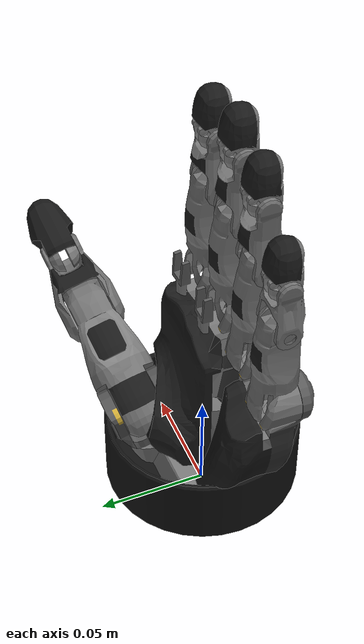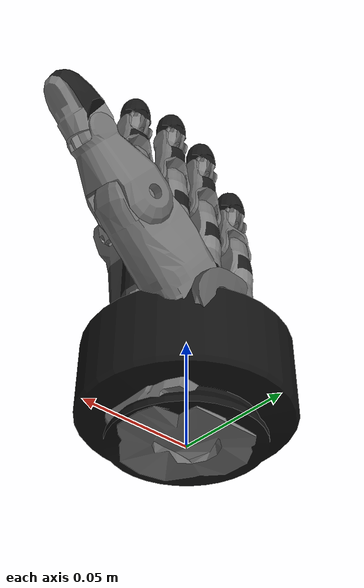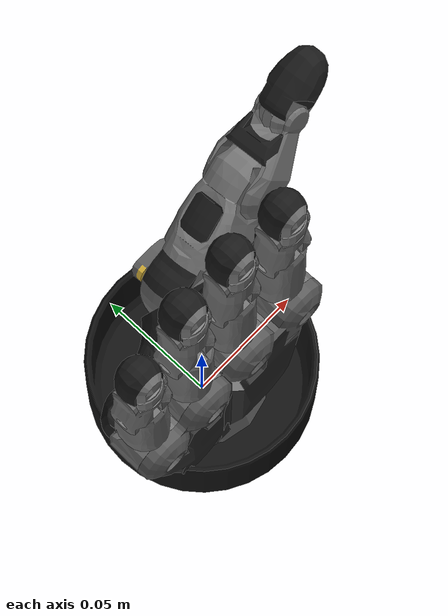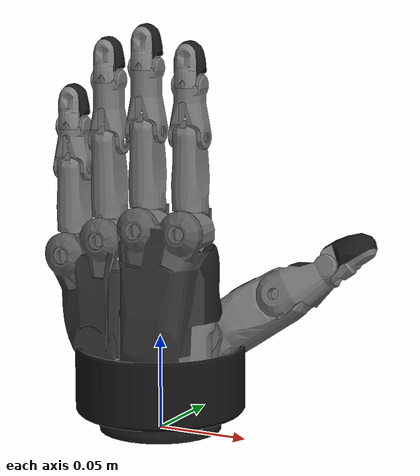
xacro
<?xml version="1.0"?>
<robot name="svh" xmlns:xacro="http://www.ros.org/wiki/xacro">

 <xacro:include filename="$(find schunk_svh_description)/urdf/svh.urdf.xacro" />

 <link name="base_link" />

 <xacro:svh parent="base_link" name="left_hand" side="-1">
    <origin xyz="0 0 0"  rpy= "0 0 0" />
  </xacro:svh>

</robot>

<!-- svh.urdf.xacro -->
<robot xmlns:xacro="http://www.ros.org/wiki/xacro">

  <xacro:include filename="$(find schunk_svh_description)/urdf/common.xacro" />
  <xacro:include filename="$(find schunk_svh_description)/urdf/svh.transmission.xacro" />
  <xacro:include filename="$(find schunk_svh_description)/urdf/svh.gazebo.xacro" />

  <xacro:property name="cyl_radius" value="0.001" />
  <xacro:macro name="svh" params="parent name side *origin robot_namespace:='/'">
    <!-- RIGHT HAND = 1, LEFT HAND = -1 -->
    <!-- BASE_LINE LINKS -->

    <joint name="${name}_base_joint" type="fixed" >
      <xacro:insert_block name="origin" />
      <parent link="${parent}" />
      <child link="${name}_base_link" />
    </joint>

    <link name="${name}_base_link">
      <xacro:insert_block name="origin" />
      <visual>
        <xacro:insert_block name="origin" />
        <geometry>
          <mesh filename="package://schunk_svh_description/meshes/base10.dae" />
	</geometry>
      </visual>
      <collision>
        <xacro:insert_block name="origin" />
        <geometry>
          <mesh filename="package://schunk_svh_description/meshes/base10.dae" />
	</geometry>
      </collision>
      <inertial>
        <mass value="0.57743"/>
        <origin xyz="0.0 -2.3e-05 0.139371"/>
        <inertia ixx="0.04725" ixy="-0.0" ixz="-0.0" iyy="0.04717" iyz="0.0" izz="0.07606" />
      </inertial>
    </link>

    <link name="${name}_d">
      <xacro:default_inertial mass="0.01"/>
    </link>

    <link name="${name}_h">
      <xacro:default_inertial mass="0.01"/>
    </link>

    <link name="${name}_d2">
      <xacro:default_inertial mass="0.01"/>
    </link>

    <!-- LENGTH NOT FOUND IN DATASHEET! GUESSED!!! -->
    <link name="${name}_e1">
      <visual>
	<origin rpy="0 0 0" xyz="0 0.01313 0" />
	<geometry>
          <mesh scale="${side*(1)} 1 1" filename="package://schunk_svh_description/meshes/h10.dae" />
	</geometry>
      </visual>
      <collision>
	<origin rpy="0 0 0" xyz="0 0.01313 0" />
	<geometry>
          <mesh scale="${side*(1)} 1 1" filename="package://schunk_svh_description/meshes/h10.dae" />
	</geometry>
      </collision>
      <xacro:default_inertial mass="0.01"/>
    </link>

    <!-- LENGTH NOT FOUND IN DATASHEET! GUESSED!!! -->
    <link name="${name}_e2">
      <visual>
	<origin xyz="${side*(-0.0007)} 0 -0.01002" />
	<geometry>
          <mesh scale="${side*(1)} 1 1" filename="package://schunk_svh_description/meshes/h11.dae" />
	</geometry>
      </visual>
      <collision>
	<origin xyz="${side*(-0.0007)} 0 -0.01002" />
	<geometry>
          <mesh scale="${side*(1)} 1 1" filename="package://schunk_svh_description/meshes/h11.dae" />
	</geometry>
      </collision>
      <inertial>
        <mass value="0.46184"/>
        <origin xyz="0.145071 -0.037868 0.323449"/>
        <inertia ixx="0.01908" ixy="-0.00121" ixz="-0.00011" iyy="0.01704" iyz="0.00277" izz="0.00862"/>
      </inertial>
    </link>

    <!-- LENGTH NOT FOUND IN DATASHEET! GUESSED!!! -->
    <link name="${name}_e3">
      <xacro:default_inertial mass="0.01"/>
    </link>

    <link name="${name}_e">
    </link>

    <!-- LENGTH NOT FOUND IN DATASHEET! GUESSED, BUT POSITION CALCULATED WITH E4 = D-G-F!!! -->
    <link name="${name}_e4">
      <xacro:default_inertial mass="0.01"/>
    </link>

    <!-- LENGTH NOT FOUND IN DATASHEET! GUESSED, BUT POSITION CALCULATED WITH E5 = D-G!!! -->
    <link name="${name}_e5">
      <xacro:default_inertial mass="0.01"/>
    </link>

    <!-- THUMB LINKS -->
    <link name="${name}_z">
      <visual>
	<origin xyz="0 0 0.02442" />
	<geometry>
          <mesh scale="1 ${side*(1)} 1" filename="package://schunk_svh_description/meshes/d10.dae" />
	</geometry>
      </visual>
      <collision>
	<origin xyz="0 0 0.02442" />
	<geometry>
          <mesh scale="1 ${side*(1)} 1" filename="package://schunk_svh_description/meshes/d10.dae" />
	</geometry>
      </collision>
      <inertial>
        <mass value="0.0739"/>
        <origin xyz="0.0 0.002024 0.178636"/>
        <inertia ixx="0.00103" ixy="-0.0" ixz="-0.0" iyy="0.00165" iyz="4e-05" izz="0.00111"/>
      </inertial>
    </link>

    <link name="${name}_virtual_a">
      <xacro:default_inertial mass="0.01"/>
    </link>

    <link name="${name}_a">
      <visual>
	<geometry>
          <mesh scale="1 ${side*(1)} ${side*(1)}" filename="package://schunk_svh_description/meshes/d11.dae" />
	</geometry>
      </visual>
      <collision>
	<geometry>
          <mesh scale="1 ${side*(1)} ${side*(1)}" filename="package://schunk_svh_description/meshes/d11.dae" />
	</geometry>
      </collision>
      <inertial>
        <mass value="0.41222"/>
        <origin xyz="0.240205 0.010733 0.00019"/>
        <inertia ixx="0.00413" ixy="0.00073" ixz="-0.0" iyy="0.01679" iyz="0.0" izz="0.01796"/>
      </inertial>
    </link>

    <link name="${name}_b">
      <visual>
	<geometry>
          <mesh scale="1 ${side*(1)} ${side*(1)}" filename="package://schunk_svh_description/meshes/d12.dae" />
	</geometry>
      </visual>
      <collision>
	<geometry>
          <mesh scale="1 ${side*(1)} ${side*(1)}" filename="package://schunk_svh_description/meshes/d12.dae" />
	</geometry>
      </collision>
      <inertial>
        <mass value="0.08224"/>
        <origin xyz="0.123157 -0.008382 -2.7e-05"/>
        <inertia ixx="0.00089" ixy="5e-05" ixz="0.0" iyy="0.00139" iyz="0.0" izz="0.00103"/>
      </inertial>
    </link>

    <link name="${name}_c">
      <visual>
	<geometry>
          <mesh scale="1 ${side*(1)} ${side*(1)}" filename="package://schunk_svh_description/meshes/d13.dae" />
	</geometry>
      </visual>
      <collision>
	<geometry>
          <mesh scale="1 ${side*(1)} ${side*(1)}" filename="package://schunk_svh_description/meshes/d13.dae" />
	</geometry>
      </collision>
      <inertial>
        <mass value="0.06198"/>
        <origin xyz="0.113729 0.01094 0.0"/>
        <inertia ixx="0.00025" ixy="-0.0" ixz="-0.0" iyy="0.00051" iyz="0.0" izz="0.00052"/>
      </inertial>
    </link>

    <!-- INDEX FINGER LINKS -->
    <link name="${name}_virtual_l">
      <visual>
	<origin xyz="0 0 0.01321" />
	<geometry>
          <mesh filename="package://schunk_svh_description/meshes/f10.dae" />
	</geometry>
      </visual>
      <collision>
	<origin xyz="0 0 0.01321" />
	<geometry>
          <mesh filename="package://schunk_svh_description/meshes/f10.dae" />
	</geometry>
      </collision>
      <inertial>
        <mass value="0.02383"/>
        <origin xyz="0.003634 0.000206 -0.09885"/>
        <inertia ixx="0.00021" ixy="-0.0" ixz="-1e-05" iyy="0.00011" iyz="-0.0" izz="0.00019"/>
      </inertial>
    </link>

    <link name="${name}_l">
      <visual>
	<geometry>
          <mesh filename="package://schunk_svh_description/meshes/f11.dae" />
	</geometry>
      </visual>
      <collision>
	<geometry>
          <mesh filename="package://schunk_svh_description/meshes/f11.dae" />
	</geometry>
      </collision>
      <inertial>
        <mass value="0.13003"/>
        <origin xyz="0.261673 0.003521 0.0"/>
        <inertia ixx="0.00051" ixy="-3e-05" ixz="0.0" iyy="0.00335" iyz="-0.0" izz="0.00344"/>
      </inertial>
    </link>

    <link name="${name}_p">
      <visual>
	<geometry>
          <mesh filename="package://schunk_svh_description/meshes/f12.dae" />
	</geometry>
      </visual>
      <collision>
	<geometry>
          <mesh filename="package://schunk_svh_description/meshes/f12.dae" />
	</geometry>
      </collision>
      <inertial>
        <mass value="0.03264"/>
        <origin xyz="0.1384 -0.004609 0.0"/>
        <inertia ixx="0.00016" ixy="-0.0" ixz="0.0" iyy="0.00031" iyz="-0.0" izz="0.00024"/>
      </inertial>
    </link>

    <link name="${name}_t">
      <visual>
	<geometry>
          <mesh filename="package://schunk_svh_description/meshes/f13.dae" />
	</geometry>
      </visual>
      <collision>
	<geometry>
          <mesh filename="package://schunk_svh_description/meshes/f13.dae" />
	</geometry>
      </collision>
      <inertial>
        <mass value="0.0324"/>
        <origin xyz="0.102924 0.000592 0.0"/>
        <inertia ixx="9e-05" ixy="-1e-05" ixz="-0.0" iyy="0.00017" iyz="0.0" izz="0.00017"/>
      </inertial>
    </link>

    <!-- MIDDLE FINGER LINKS -->
    <link name="${name}_virtual_k">
      <visual>
	<origin xyz="0 0 0.01321" />
	<geometry>
          <mesh filename="package://schunk_svh_description/meshes/f20.dae" />
	</geometry>
      </visual>
      <collision>
	<origin xyz="0 0 0.01321" />
	<geometry>
          <mesh filename="package://schunk_svh_description/meshes/f20.dae" />
	</geometry>
      </collision>
      <inertial>
        <mass value="0.02377"/>
        <origin xyz="0.003357 -8e-06 -0.099643"/>
        <inertia ixx="0.00021" ixy="-0.0" ixz="-1e-05" iyy="0.00011" iyz="0.0" izz="0.00019"/>
      </inertial>
    </link>

    <link name="${name}_k">
      <visual>
	<geometry>
          <mesh filename="package://schunk_svh_description/meshes/f21.dae" />
	</geometry>
      </visual>
      <collision>
	<geometry>
          <mesh filename="package://schunk_svh_description/meshes/f21.dae" />
	</geometry>
      </collision>
      <inertial>
        <mass value="0.13474"/>
        <origin xyz="0.271122 0.00413 0.0"/>
        <inertia ixx="0.00052" ixy="-3e-05" ixz="-0.0" iyy="0.0037" iyz="-0.0" izz="0.0038"/>
      </inertial>
    </link>

    <link name="${name}_o">
      <visual>
	<geometry>
          <mesh filename="package://schunk_svh_description/meshes/f22.dae" />
	</geometry>
      </visual>
      <collision>
	<geometry>
          <mesh filename="package://schunk_svh_description/meshes/f22.dae" />
	</geometry>
      </collision>
      <inertial>
        <mass value="0.0422"/>
        <origin xyz="0.16683 -0.003774 0.0"/>
        <inertia ixx="0.0002" ixy="0.0" ixz="-0.0" iyy="0.00047" iyz="0.0" izz="0.0004"/>
      </inertial>
    </link>

    <link name="${name}_s">
      <visual>
	<geometry>
          <mesh filename="package://schunk_svh_description/meshes/f23.dae" />
	</geometry>
      </visual>
      <collision>
	<geometry>
          <mesh filename="package://schunk_svh_description/meshes/f23.dae" />
	</geometry>
      </collision>
      <inertial>
        <mass value="0.03239"/>
        <origin xyz="0.102794 0.00042 0.0"/>
        <inertia ixx="9e-05" ixy="-1e-05" ixz="0.0" iyy="0.00017" iyz="0.0" izz="0.00017"/>
      </inertial>
    </link>

    <!-- RING FINGER LINKS -->
    <link name="${name}_virtual_j">
      <visual>
	<origin xyz="0 0 -0.01321" />
	<geometry>
          <mesh filename="package://schunk_svh_description/meshes/f30.dae" />
	</geometry>
      </visual>
      <collision>
	<origin xyz="0 0 -0.01321" />
	<geometry>
          <mesh filename="package://schunk_svh_description/meshes/f30.dae" />
	</geometry>
      </collision>
      <inertial>
        <mass value="0.02377"/>
        <origin xyz="0.003805 0.000386 0.100079"/>
        <inertia ixx="0.00021" ixy="0.0" ixz="1e-05" iyy="0.00011" iyz="-0.0" izz="0.00019"/>
      </inertial>
    </link>

    <link name="${name}_j">
      <visual>
	<geometry>
          <mesh filename="package://schunk_svh_description/meshes/f31.dae" />
	</geometry>
      </visual>
      <collision>
	<geometry>
          <mesh filename="package://schunk_svh_description/meshes/f31.dae" />
	</geometry>
      </collision>
      <inertial>
        <mass value="0.1377"/>
        <origin xyz="0.258283 -0.00154 0.0"/>
        <inertia ixx="0.00055" ixy="0.00018" ixz="-0.0" iyy="0.00411" iyz="0.0" izz="0.00426"/>
      </inertial>
    </link>

    <link name="${name}_n">
      <visual>
	<geometry>
          <mesh filename="package://schunk_svh_description/meshes/f32.dae" />
	</geometry>
      </visual>
      <collision>
	<geometry>
          <mesh filename="package://schunk_svh_description/meshes/f32.dae" />
	</geometry>
      </collision>
      <inertial>
        <mass value="0.04207"/>
        <origin xyz="0.166851 -0.00362 0.0"/>
        <inertia ixx="0.00019" ixy="0.0" ixz="-0.0" iyy="0.00047" iyz="0.0" izz="0.0004"/>
      </inertial>
    </link>

    <link name="${name}_r">
      <visual>
	<geometry>
          <mesh filename="package://schunk_svh_description/meshes/f33.dae" />
	</geometry>
      </visual>
      <collision>
	<geometry>
          <mesh filename="package://schunk_svh_description/meshes/f33.dae" />
	</geometry>
      </collision>
      <inertial>
        <mass value="0.03229"/>
        <origin xyz="0.102676 0.000301 0.0"/>
        <inertia ixx="9e-05" ixy="-1e-05" ixz="0.0" iyy="0.00017" iyz="-0.0" izz="0.00017"/>
      </inertial>
    </link>

    <!-- LITTLE FINGER LINKS -->
    <link name="${name}_virtual_i">
      <visual>
	<origin xyz="0 0 -0.01321" />
	<geometry>
          <mesh filename="package://schunk_svh_description/meshes/f40.dae" />
	</geometry>
      </visual>
      <collision>
	<origin xyz="0 0 -0.01321" />
	<geometry>
          <mesh filename="package://schunk_svh_description/meshes/f40.dae" />
	</geometry>
      </collision>
      <inertial>
        <mass value="0.02377"/>
        <origin xyz="0.003653 4.4e-05 0.100085"/>
        <inertia ixx="0.00021" ixy="0.0" ixz="1e-05" iyy="0.00011" iyz="-0.0" izz="0.00019"/>
      </inertial>
    </link>

    <link name="${name}_i">
      <visual>
	<geometry>
          <mesh filename="package://schunk_svh_description/meshes/f41.dae" />
	</geometry>
      </visual>
      <collision>
	<geometry>
          <mesh filename="package://schunk_svh_description/meshes/f41.dae" />
	</geometry>
      </collision>
      <inertial>
        <mass value="0.12544"/>
        <origin xyz="0.232293 0.00622 0.0"/>
        <inertia ixx="0.00049" ixy="6e-05" ixz="-0.0" iyy="0.00316" iyz="0.0" izz="0.00328"/>
      </inertial>
    </link>

    <link name="${name}_m">
      <visual>
	<geometry>
          <mesh filename="package://schunk_svh_description/meshes/f42.dae" />
	</geometry>
      </visual>
      <collision>
	<geometry>
          <mesh filename="package://schunk_svh_description/meshes/f42.dae" />
	</geometry>
      </collision>
      <inertial>
        <mass value="0.02488"/>
        <origin xyz="0.119665 -0.009328 0.0"/>
        <inertia ixx="0.00013" ixy="-0.0" ixz="-0.0" iyy="0.00023" iyz="0.0" izz="0.00016"/>
      </inertial>
    </link>

    <link name="${name}_q">
      <visual>
	<geometry>
          <mesh filename="package://schunk_svh_description/meshes/f43.dae" />
	</geometry>
      </visual>
      <collision>
	<geometry>
          <mesh filename="package://schunk_svh_description/meshes/f43.dae" />
	</geometry>
      </collision>
      <inertial>
        <mass value="0.03234"/>
        <origin xyz="0.102896 0.000307 0.0"/>
        <inertia ixx="9e-05" ixy="-1e-05" ixz="-0.0" iyy="0.00017" iyz="0.0" izz="0.00017"/>
      </inertial>
    </link>

    <joint name="${name}_Thumb_Flexion" type="revolute">
      <parent link="${name}_virtual_a" />
      <child link="${name}_a" />
      <limit effort="1000.0" lower="0.0" upper="0.9704" velocity="1" />
      <origin xyz="0 0 0" rpy="0 0 ${side*(-0.9704)}" />
      <axis xyz="0 0 ${side*(1)}" />
    </joint>

    <joint name="${name}_Thumb_Helper" type="fixed">
      <parent link="${name}_z" />
      <child link="${name}_virtual_a" />
      <origin xyz="0 0 0.04596" rpy="0 -1.5707 3.1416" />
    </joint>

    <!-- BASE_LINE JOINTS -->
    <joint name="${name}_Thumb_Opposition" type="revolute">
      <parent link="${name}_e1" />
      <child link="${name}_z" />
      <limit effort="1000.0" lower="0.0" upper="0.9879" velocity="1" />
      <origin xyz="${side*(-0.01690)} 0.02626 0" rpy="0 0.2618 1.571" />
      <axis xyz="0 0 ${side*(-1)}" />
    </joint>

    <!-- JOINT NOT FOR BASE_LINE. BUT WRITTEN DOWN HERE FOR BETTER UX -->

    <joint name="${name}_f1" type="fixed">
      <parent link="${name}_e1" />
      <child link="${name}_d" />
      <origin xyz="0 0 0" rpy="0 0 0" />
    </joint>

    <joint name="${name}_f2" type="fixed">
      <parent link="${name}_d" />
      <child link="${name}_h" />
      <origin xyz="0 0 0" rpy="0 0 0" />
    </joint>

    <joint name="${name}_f3" type="fixed">
      <parent link="${name}_h" />
      <child link="${name}_d2" />
      <origin xyz="0 0 0" rpy="0 0 0" />
    </joint>

    <joint name="${name}_f4" type="fixed">
      <parent link="${name}_base_link" />
      <child link="${name}_e1" />
      <origin xyz="0 -0.01313 0" rpy="0 0 0" />
    </joint>
    <!-- J5 JOINTS is set to fixed temporarily due to defective DH algo -->
    <joint name="${name}_j5" type="fixed">
      <parent link="${name}_e1"/>
      <child link="${name}_e2"/>
      <!--limit effort="1000.0" lower="0.0" upper="0.98786" velocity="1"/-->
      <origin xyz="${side*(0.01840)} 0.006 0.0375" rpy="0 0 0" />
      <!--axis xyz="0 0 ${side*(1)}"/-->
      <!--mimic joint="${name}_Thumb_Opposition" multiplier="1" offset="0"/-->
    </joint>

    <joint name="${name}_f5" type="fixed">
      <parent link="${name}_e2" />
      <child link="${name}_e3" />
      <origin xyz="0 -0.0060 0" rpy="0 0 0" />
    </joint>

    <joint name="${name}_f6" type="fixed">
      <parent link="${name}_e3" />
      <child link="${name}_e" />
      <origin xyz="0 0 0" rpy="0 0 0" />
    </joint>

    <joint name="${name}_f7" type="fixed">
      <parent link="${name}_e" />
      <child link="${name}_e4" />
      <origin xyz="0 0 0" rpy="0 0 0" />
    </joint>

    <joint name="${name}_f8" type="fixed">
      <parent link="${name}_e" />
      <child link="${name}_e5" />
      <origin xyz="0 0 0" rpy="0 0 0" />
    </joint>

    <!-- THUMB JOINTS -->
    <joint name="${name}_j3" type="revolute">
      <parent link="${name}_a" />
      <child link="${name}_b" />
      <limit effort="1000.0" lower="0.0" upper="0.98506" velocity="1" />
      <origin xyz="0.0485 0 0" rpy="0 0 0" />
      <axis xyz="0 0 ${side*(1)}" />
      <mimic joint="${name}_Thumb_Flexion" multiplier="1.01511" offset="0" />
    </joint>

    <joint name="${name}_j4" type="revolute">
      <parent link="${name}_b" />
      <child link="${name}_c" />
      <limit effort="1000.0" lower="0.0" upper="1.406" velocity="1" />
      <origin xyz="0.030 0 0" rpy="0 0 0" />
      <axis xyz="0 0 ${side*(1)}" />
      <mimic joint="${name}_Thumb_Flexion" multiplier="1.44889" offset="0" />
    </joint>

    <!-- INDEX FINGER JOINTS -->
    <joint name="${name}_Index_Finger_Distal" type="revolute">
      <parent link="${name}_l" />
      <child link="${name}_p" />
      <limit effort="1000.0" lower="0" upper="1.334" velocity="1" />
      <origin xyz="0.04804 0 0" rpy="0 0 0" />
      <axis xyz="0 0 1" />
    </joint>

    <joint name="${name}_Index_Finger_Proximal" type="revolute">
      <parent link="${name}_virtual_l" />
      <child link="${name}_l" />
      <limit effort="1000.0" lower="0.0" upper="0.79849" velocity="1" />
      <origin xyz="0 0 0" rpy="-1.5707 0 0" />
      <axis xyz="0 0 1" />
    </joint>

    <!-- JOINT Finger_Spread in BASE_LINE section for better UX -->
    <joint name="${name}_j14" type="revolute">
      <parent link="${name}_p" />
      <child link="${name}_t" />
      <limit effort="1000.0" lower="0" upper="1.394" velocity="1" />
      <origin xyz="0.026 0 0" rpy="0 0 0" />
      <axis xyz="0 0 1" />
      <mimic joint="${name}_Index_Finger_Distal" multiplier="1.0450" offset="0" />
    </joint>

    <!-- MIDDLE FINGER JOINTS -->
    <joint name="${name}_Middle_Finger_Proximal" type="revolute">
      <parent link="${name}_virtual_k" />
      <child link="${name}_k" />
      <limit effort="1000.0" lower="0.0" upper="0.79849" velocity="1" />
      <origin xyz="0 0 0" rpy="-1.5707 0 0" />
      <axis xyz="0 0 1" />
    </joint>

    <joint name="${name}_Middle_Finger_Distal" type="revolute">
      <parent link="${name}_k" />
      <child link="${name}_o" />
      <limit effort="1000.0" lower="0" upper="1.334" velocity="1" />
      <origin xyz="0.05004 0 0" rpy="0 0 0" />
      <axis xyz="0 0 1" />
    </joint>

    <joint name="${name}_j15" type="revolute">
      <parent link="${name}_o" />
      <child link="${name}_s" />
      <limit effort="1000.0" lower="0" upper="1.334" velocity="1" />
      <origin xyz="0.032 0 0" rpy="0 0 0" />
      <axis xyz="0 0 1" />
      <mimic joint="${name}_Middle_Finger_Distal" multiplier="1.0454" offset="0" />
    </joint>

    <!-- RING FINGER JOINTS -->
    <joint name="${name}_Ring_Finger" type="revolute">
      <parent link="${name}_virtual_j" />
      <child link="${name}_j" />
      <limit effort="1000.0" lower="0.0" upper="0.98175" velocity="1" />
      <origin xyz="0 0 0" rpy="1.5707 0 0" />
      <axis xyz="0 0 1" />
    </joint>

    <joint name="${name}_j12" type="revolute">
      <parent link="${name}_j" />
      <child link="${name}_n" />
      <limit effort="1000.0" lower="0" upper="1.334" velocity="1" />
      <origin xyz="0.05004 0 0" rpy="0 0 0" />
      <axis xyz="0 0 1" />
      <mimic joint="${name}_Ring_Finger" multiplier="1.3588" offset="0" />
    </joint>

    <joint name="${name}_j16" type="revolute">
      <parent link="${name}_n" />
      <child link="${name}_r" />
      <limit effort="1000.0" lower="0" upper="1.395" velocity="1" />
      <origin xyz="0.032 0 0" rpy="0 0 0" />
      <axis xyz="0 0 1" />
      <mimic joint="${name}_Ring_Finger" multiplier="1.42093" offset="0" />
    </joint>

    <!-- PINKY JOINTS -->
    <joint name="${name}_Pinky" type="revolute">
      <parent link="${name}_virtual_i" />
      <child link="${name}_i" />
      <limit effort="1000.0" lower="0.0" upper="0.98175" velocity="1" />
      <origin xyz="0 0 0" rpy="1.5707 0 0" />
      <axis xyz="0 0 1" />
    </joint>

    <joint name="${name}_j13" type="revolute">
      <parent link="${name}_i" />
      <child link="${name}_m" />
      <limit effort="1000.0" lower="0" upper="1.334" velocity="1" />
      <origin xyz="0.04454 0 0" rpy="0 0 0" />
      <axis xyz="0 0 1" />
      <mimic joint="${name}_Pinky" multiplier="1.35880" offset="0" />
    </joint>

    <joint name="${name}_j17" type="revolute">
      <parent link="${name}_m" />
      <child link="${name}_q" />
      <limit effort="1000.0" lower="0" upper="1.3971" velocity="1" />
      <origin xyz="0.022 0 0" rpy="0 0 0" />
      <axis xyz="0 0 1" />
      <mimic joint="${name}_Pinky" multiplier="1.42307" offset="0" />
    </joint>

    <joint name="${name}_index_spread" type="revolute">
      <parent link="${name}_d2" />
      <child link="${name}_virtual_l" />
      <limit effort="1000.0" lower="0.0" upper="0.28833" velocity="1" />
      <origin xyz="${side*(-0.025)} 0 0.110" rpy="0 -1.5707 1.5707" />
      <axis xyz="0 0 ${side*(1)}" />
      <mimic joint="${name}_Finger_Spread" multiplier="0.5" offset="0" />
    </joint>

    <joint name="${name}_middle_spread_dummy" type="fixed">
      <parent link="${name}_d" />
      <child link="${name}_virtual_k" />
      <origin xyz="0 0 0.110" rpy="0 -1.5707 1.5707" />
    </joint>

    <joint name="${name}_ring_spread" type="revolute">
      <parent link="${name}_e5" />
      <child link="${name}_virtual_j" />
      <limit effort="1000.0" lower="0.0" upper="0.28833" velocity="1" />
      <origin xyz="${side*(0.003855)} 0 0.0655" rpy="-1.5707 -1.5707 0" />
      <axis xyz="0 0 ${side*(1)}" />
      <mimic joint="${name}_Finger_Spread" multiplier="0.5" offset="0" />
    </joint>

    <joint name="${name}_Finger_Spread" type="revolute">
      <parent link="${name}_e4" />
      <child link="${name}_virtual_i" />
      <limit effort="1000.0" lower="0.0" upper="0.5829" velocity="1" />
      <origin xyz="${side*(0.025355)} 0 0.056" rpy="-1.5707 -1.5707 0" />
      <axis xyz="0 0 ${side*(1)}" />
    </joint>

    <xacro:svh_transmission name="${name}" />
    <xacro:svh_gazebo name="${name}" robot_namespace="${robot_namespace}" />

</xacro:macro>
</robot>

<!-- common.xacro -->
<robot xmlns:xacro="http://www.ros.org/wiki/xacro">

  <xacro:property name="M_PI" value="3.1415926535897931" />

  <!-- see https://secure.wikimedia.org/wikipedia/en/wiki/List_of_moment_of_inertia_tensors -->
  <xacro:macro name="sphere_inertial" params="radius mass *origin">
    <inertial>
      <mass value="${mass}" />
      <xacro:insert_block name="origin" />
      <inertia ixx="${0.4 * mass * radius * radius}" ixy="0.0" ixz="0.0"
        iyy="${0.4 * mass * radius * radius}" iyz="0.0"
        izz="${0.4 * mass * radius * radius}" />
    </inertial>
  </xacro:macro>

  <xacro:macro name="cylinder_inertial" params="radius length mass *origin">
    <inertial>
      <mass value="${mass}" />
      <xacro:insert_block name="origin" />
      <inertia ixx="${0.0833333 * mass * (3 * radius * radius + length * length)}" ixy="0.0" ixz="0.0"
        iyy="${0.0833333 * mass * (3 * radius * radius + length * length)}" iyz="0.0"
        izz="${0.5 * mass * radius * radius}" />
    </inertial>
  </xacro:macro>

  <xacro:macro name="box_inertial" params="x y z mass *origin">
    <inertial>
      <mass value="${mass}" />
      <xacro:insert_block name="origin" />
      <inertia ixx="${0.0833333 * mass * (y*y + z*z)}" ixy="0.0" ixz="0.0"
        iyy="${0.0833333 * mass * (x*x + z*z)}" iyz="0.0"
        izz="${0.0833333 * mass * (x*x + y*y)}" />
    </inertial>
  </xacro:macro>

  <xacro:macro name="default_inertial">
    <inertial>
      <mass value="0.01" />
      <origin xyz="0 0 0" />
      <inertia ixx="0.001" ixy="0.0" ixz="0.0" iyy="0.001" iyz="0.0" izz="0.001" />
    </inertial>
  </xacro:macro>

  <xacro:macro name="default_inertial" params="mass" >
    <inertial>
      <mass value="${mass}" />
      <origin xyz="0 0 0" />
      <inertia ixx="0.001" ixy="0.0" ixz="0.0" iyy="0.001" iyz="0.0" izz="0.001" />
    </inertial>
  </xacro:macro>

  <xacro:macro name="default_transmission" params="jname">
    <transmission name="${jname}_trans">
      <type>transmission_interface/SimpleTransmission</type>
      <joint name="${jname}">
      <hardwareInterface>hardware_interface/EffortJointInterface</hardwareInterface>
      </joint>
      <actuator name="${jname}_motor">
        <mechanicalReduction>1</mechanicalReduction>
      <hardwareInterface>hardware_interface/EffortJointInterface</hardwareInterface>
      </actuator>
    </transmission>
  </xacro:macro>

  <xacro:macro name="mimic_joint_plugin_gazebo" params="name_prefix parent_joint mimic_joint has_pid:=false multiplier:=1.0 offset:=0 sensitiveness:=0.0 max_effort:=1.0 robot_namespace:=''">
    <gazebo>
      <plugin name="${name_prefix}_mimic_joint_plugin" filename="libroboticsgroup_gazebo_mimic_joint_plugin.so">
        <joint>${parent_joint}</joint>
        <mimicJoint>${mimic_joint}</mimicJoint>
        <xacro:if value="${has_pid}">                     <!-- if set to true, PID parameters from "/gazebo_ros_control/pid_gains/${mimic_joint}" are loaded -->
          <hasPID />
        </xacro:if>
        <multiplier>${multiplier}</multiplier>
        <offset>${offset}</offset>
        <sensitiveness>${sensitiveness}</sensitiveness>   <!-- if absolute difference between setpoint and process value is below this threshold, do nothing; 0.0 = disable [rad] -->
        <maxEffort>${max_effort}</maxEffort>              <!-- only taken into account if has_pid:=true [Nm] -->
        <xacro:unless value="${robot_namespace == ''}">
          <robotNamespace>${robot_namespace}</robotNamespace>
        </xacro:unless>
      </plugin>
    </gazebo>
  </xacro:macro>

</robot>
